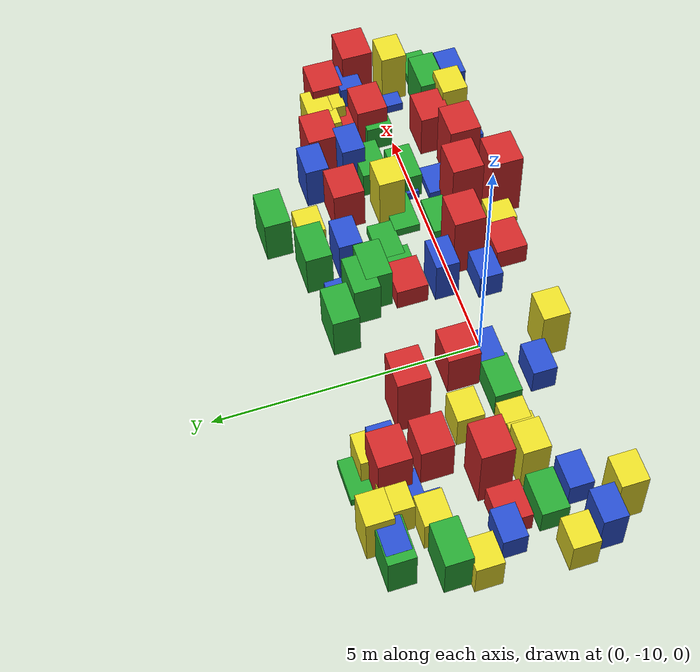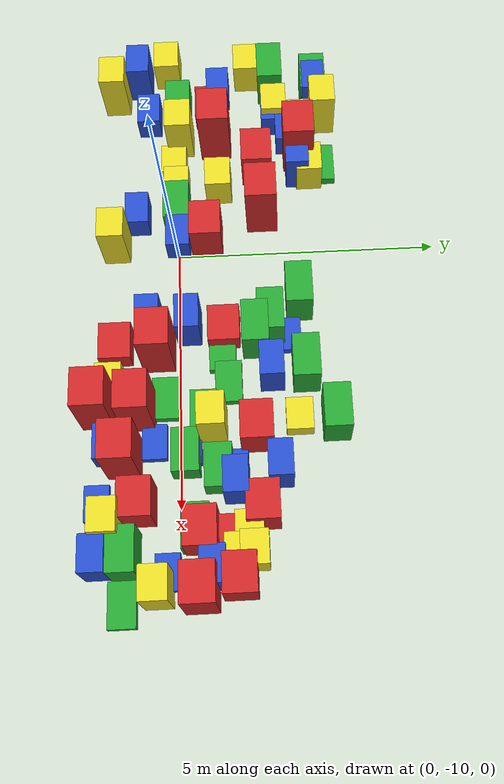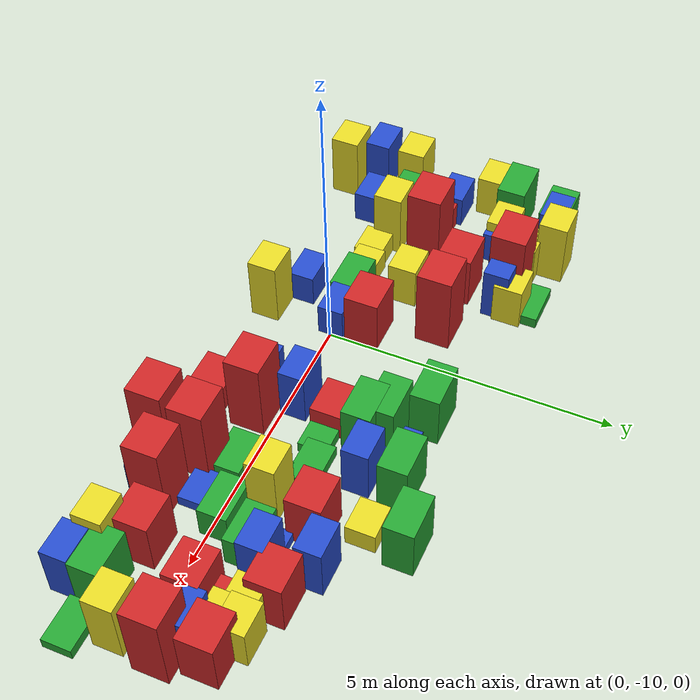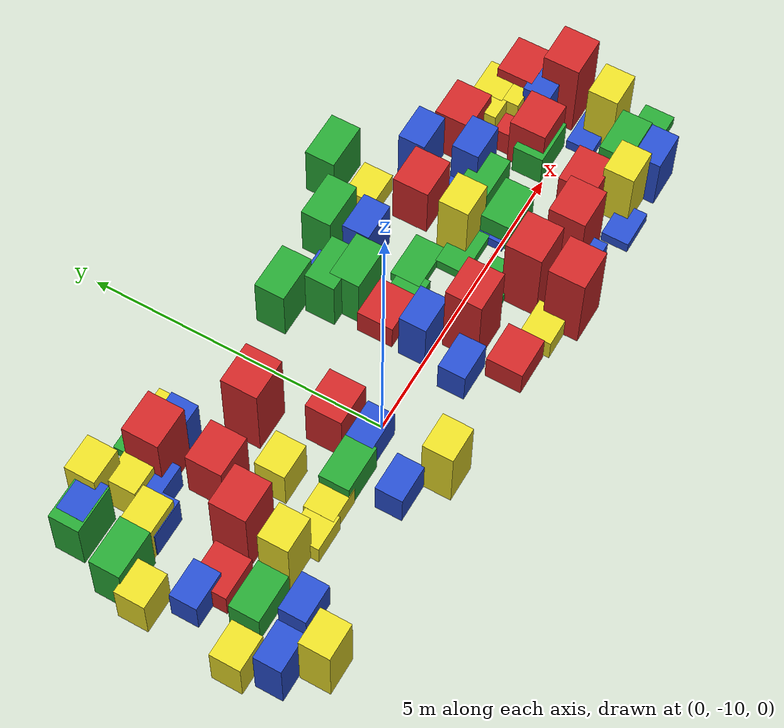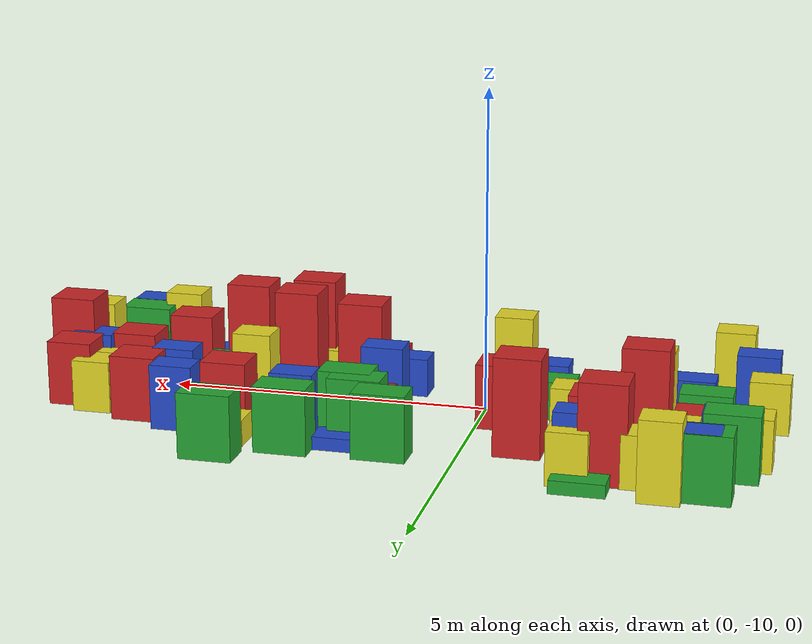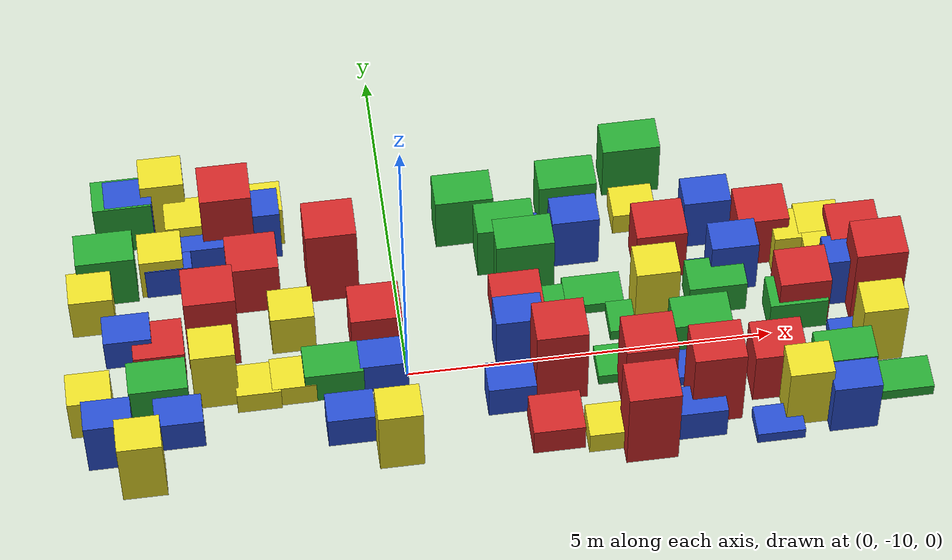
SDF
<sdf version="1.6">
 <world name="default">
  <model name="baggage_A_0.5_clone_11">
   <pose>-3.31837 -9.30433 0.250138 0 -0 0</pose>
   <static>1</static>
   <link name="baggage_A_0.5::link">
    <collision name="collision"><geometry><box><size>0.7 0.6 0.5</size></box></geometry></collision>
    <visual name="visual">
     <geometry><box><size>0.7 0.6 0.5</size></box></geometry>
     <material>
      <script><uri>file://media/materials/scripts/gazebo.material</uri><name>Gazebo/Red</name></script>
     </material>
    </visual>
   </link>
  </model>
  <model name="baggage_A_0.5_clone_12">
   <pose>1.87194 -11.1809 0.25025 0 -0 0</pose>
   <static>1</static>
   <link name="baggage_A_0.5::link">
    <collision name="collision"><geometry><box><size>0.7 0.6 0.5</size></box></geometry></collision>
    <visual name="visual">
     <geometry><box><size>0.7 0.6 0.5</size></box></geometry>
     <material>
      <script><uri>file://media/materials/scripts/gazebo.material</uri><name>Gazebo/Red</name></script>
     </material>
    </visual>
   </link>
  </model>
  <model name="baggage_A_0.5_clone_13">
   <pose>1.60495 -9.14729 0.249612 0 -0 0</pose>
   <static>1</static>
   <link name="baggage_A_0.5::link">
    <collision name="collision"><geometry><box><size>0.7 0.6 0.5</size></box></geometry></collision>
    <visual name="visual">
     <geometry><box><size>0.7 0.6 0.5</size></box></geometry>
     <material>
      <script><uri>file://media/materials/scripts/gazebo.material</uri><name>Gazebo/Red</name></script>
     </material>
    </visual>
   </link>
  </model>
  <model name="baggage_A_0.5_clone_17">
   <pose>5.55061 -9.07477 0.249861 0 -0 0</pose>
   <static>1</static>
   <link name="baggage_A_0.5::link">
    <collision name="collision"><geometry><box><size>0.7 0.6 0.5</size></box></geometry></collision>
    <visual name="visual">
     <geometry><box><size>0.7 0.6 0.5</size></box></geometry>
     <material>
      <script><uri>file://media/materials/scripts/gazebo.material</uri><name>Gazebo/Red</name></script>
     </material>
    </visual>
   </link>
  </model>
  <model name="baggage_A_1.0_clone_0">
   <pose>5.45859 -9.61955 0.500424 0 -0 0</pose>
   <static>1</static>
   <link name="baggage_A_1.0::link">
    <collision name="collision"><geometry><box><size>0.7 0.6 1</size></box></geometry></collision>
    <visual name="visual">
     <geometry><box><size>0.7 0.6 1</size></box></geometry>
     <material>
      <script><uri>file://media/materials/scripts/gazebo.material</uri><name>Gazebo/Red</name></script>
     </material>
    </visual>
   </link>
  </model>
  <model name="baggage_A_1.0_clone_7">
   <pose>4.91955 -10.7368 0.499658 0 -0 0</pose>
   <static>1</static>
   <link name="baggage_A_1.0::link">
    <collision name="collision"><geometry><box><size>0.7 0.6 1</size></box></geometry></collision>
    <visual name="visual">
     <geometry><box><size>0.7 0.6 1</size></box></geometry>
     <material>
      <script><uri>file://media/materials/scripts/gazebo.material</uri><name>Gazebo/Red</name></script>
     </material>
    </visual>
   </link>
  </model>
  <model name="baggage_A_1.0_clone_8">
   <pose>3.65214 -8.58556 0.500396 0 -0 0</pose>
   <static>1</static>
   <link name="baggage_A_1.0::link">
    <collision name="collision"><geometry><box><size>0.7 0.6 1</size></box></geometry></collision>
    <visual name="visual">
     <geometry><box><size>0.7 0.6 1</size></box></geometry>
     <material>
      <script><uri>file://media/materials/scripts/gazebo.material</uri><name>Gazebo/Red</name></script>
     </material>
    </visual>
   </link>
  </model>
  <model name="baggage_A_1.0_clone_11">
   <pose>6.26723 -8.96247 0.50022 0 -0 0</pose>
   <static>1</static>
   <link name="baggage_A_1.0::link">
    <collision name="collision"><geometry><box><size>0.7 0.6 1</size></box></geometry></collision>
    <visual name="visual">
     <geometry><box><size>0.7 0.6 1</size></box></geometry>
     <material>
      <script><uri>file://media/materials/scripts/gazebo.material</uri><name>Gazebo/Red</name></script>
     </material>
    </visual>
   </link>
  </model>
  <model name="baggage_A_1.0_clone_12">
   <pose>-0.366477 -9.43157 0.500268 0 -0 0</pose>
   <static>1</static>
   <link name="baggage_A_1.0::link">
    <collision name="collision"><geometry><box><size>0.7 0.6 1</size></box></geometry></collision>
    <visual name="visual">
     <geometry><box><size>0.7 0.6 1</size></box></geometry>
     <material>
      <script><uri>file://media/materials/scripts/gazebo.material</uri><name>Gazebo/Red</name></script>
     </material>
    </visual>
   </link>
  </model>
  <model name="baggage_A_1.0_clone_15">
   <pose>5.06848 -8.52743 0.499714 0 -0 0</pose>
   <static>1</static>
   <link name="baggage_A_1.0::link">
    <collision name="collision"><geometry><box><size>0.7 0.6 1</size></box></geometry></collision>
    <visual name="visual">
     <geometry><box><size>0.7 0.6 1</size></box></geometry>
     <material>
      <script><uri>file://media/materials/scripts/gazebo.material</uri><name>Gazebo/Red</name></script>
     </material>
    </visual>
   </link>
  </model>
  <model name="baggage_A_1.0_clone_18">
   <pose>-1.93145 -8.39325 0.500077 0 -0 0</pose>
   <static>1</static>
   <link name="baggage_A_1.0::link">
    <collision name="collision"><geometry><box><size>0.7 0.6 1</size></box></geometry></collision>
    <visual name="visual">
     <geometry><box><size>0.7 0.6 1</size></box></geometry>
     <material>
      <script><uri>file://media/materials/scripts/gazebo.material</uri><name>Gazebo/Red</name></script>
     </material>
    </visual>
   </link>
  </model>
  <model name="baggage_A_1.5_clone_2">
   <pose>-2.20156 -7.55419 0.750259 0 -0 0</pose>
   <static>1</static>
   <link name="baggage_A_1.5::link">
    <collision name="collision"><geometry><box><size>0.7 0.6 1.5</size></box></geometry></collision>
    <visual name="visual">
     <geometry><box><size>0.7 0.6 1.5</size></box></geometry>
     <material>
      <script><uri>file://media/materials/scripts/gazebo.material</uri><name>Gazebo/Red</name></script>
     </material>
    </visual>
   </link>
  </model>
  <model name="baggage_A_1.5_clone_3">
   <pose>3.08282 -11.4936 0.750184 0 -0 0</pose>
   <static>1</static>
   <link name="baggage_A_1.5::link">
    <collision name="collision"><geometry><box><size>0.7 0.6 1.5</size></box></geometry></collision>
    <visual name="visual">
     <geometry><box><size>0.7 0.6 1.5</size></box></geometry>
     <material>
      <script><uri>file://media/materials/scripts/gazebo.material</uri><name>Gazebo/Red</name></script>
     </material>
    </visual>
   </link>
  </model>
  <model name="baggage_A_1.5_clone_4">
   <pose>2.01974 -10.377 0.749721 0 -0 0</pose>
   <static>1</static>
   <link name="baggage_A_1.5::link">
    <collision name="collision"><geometry><box><size>0.7 0.6 1.5</size></box></geometry></collision>
    <visual name="visual">
     <geometry><box><size>0.7 0.6 1.5</size></box></geometry>
     <material>
      <script><uri>file://media/materials/scripts/gazebo.material</uri><name>Gazebo/Red</name></script>
     </material>
    </visual>
   </link>
  </model>
  <model name="baggage_A_1.5_clone_7">
   <pose>-0.848958 -8.33948 0.750186 0 -0 0</pose>
   <static>1</static>
   <link name="baggage_A_1.5::link">
    <collision name="collision"><geometry><box><size>0.7 0.6 1.5</size></box></geometry></collision>
    <visual name="visual">
     <geometry><box><size>0.7 0.6 1.5</size></box></geometry>
     <material>
      <script><uri>file://media/materials/scripts/gazebo.material</uri><name>Gazebo/Red</name></script>
     </material>
    </visual>
   </link>
  </model>
  <model name="baggage_A_1.5_clone_8">
   <pose>6.46251 -9.63393 0.750483 0 -0 0</pose>
   <static>1</static>
   <link name="baggage_A_1.5::link">
    <collision name="collision"><geometry><box><size>0.7 0.6 1.5</size></box></geometry></collision>
    <visual name="visual">
     <geometry><box><size>0.7 0.6 1.5</size></box></geometry>
     <material>
      <script><uri>file://media/materials/scripts/gazebo.material</uri><name>Gazebo/Red</name></script>
     </material>
    </visual>
   </link>
  </model>
  <model name="baggage_A_1.5_clone_9">
   <pose>-2.56708 -9.21065 0.749579 0 -0 0</pose>
   <static>1</static>
   <link name="baggage_A_1.5::link">
    <collision name="collision"><geometry><box><size>0.7 0.6 1.5</size></box></geometry></collision>
    <visual name="visual">
     <geometry><box><size>0.7 0.6 1.5</size></box></geometry>
     <material>
      <script><uri>file://media/materials/scripts/gazebo.material</uri><name>Gazebo/Red</name></script>
     </material>
    </visual>
   </link>
  </model>
  <model name="baggage_A_1.5_clone_16">
   <pose>3.15994 -10.748 0.749519 0 -0 0</pose>
   <static>1</static>
   <link name="baggage_A_1.5::link">
    <collision name="collision"><geometry><box><size>0.7 0.6 1.5</size></box></geometry></collision>
    <visual name="visual">
     <geometry><box><size>0.7 0.6 1.5</size></box></geometry>
     <material>
      <script><uri>file://media/materials/scripts/gazebo.material</uri><name>Gazebo/Red</name></script>
     </material>
    </visual>
   </link>
  </model>
  <model name="baggage_A_1.5_clone_19">
   <pose>4.03504 -11.0029 0.74987 0 -0 0</pose>
   <static>1</static>
   <link name="baggage_A_1.5::link">
    <collision name="collision"><geometry><box><size>0.7 0.6 1.5</size></box></geometry></collision>
    <visual name="visual">
     <geometry><box><size>0.7 0.6 1.5</size></box></geometry>
     <material>
      <script><uri>file://media/materials/scripts/gazebo.material</uri><name>Gazebo/Red</name></script>
     </material>
    </visual>
   </link>
  </model>
  <model name="baggage_B_0.2_clone_1">
   <pose>3.77178 -10.4583 0.100323 0 -0 0</pose>
   <static>1</static>
   <link name="baggage_B_0.2::link">
    <collision name="collision"><geometry><box><size>0.65 0.45 0.2</size></box></geometry></collision>
    <visual name="visual">
     <geometry><box><size>0.65 0.45 0.2</size></box></geometry>
     <material>
      <script><uri>file://media/materials/scripts/gazebo.material</uri><name>Gazebo/Blue</name></script>
     </material>
    </visual>
   </link>
  </model>
  <model name="baggage_B_0.2_clone_2">
   <pose>3.89194 -9.83264 0.100276 0 -0 0</pose>
   <static>1</static>
   <link name="baggage_B_0.2::link">
    <collision name="collision"><geometry><box><size>0.65 0.45 0.2</size></box></geometry></collision>
    <visual name="visual">
     <geometry><box><size>0.65 0.45 0.2</size></box></geometry>
     <material>
      <script><uri>file://media/materials/scripts/gazebo.material</uri><name>Gazebo/Blue</name></script>
     </material>
    </visual>
   </link>
  </model>
  <model name="baggage_B_0.2_clone_3">
   <pose>4.29897 -8.99162 0.099664 0 -0 0</pose>
   <static>1</static>
   <link name="baggage_B_0.2::link">
    <collision name="collision"><geometry><box><size>0.65 0.45 0.2</size></box></geometry></collision>
    <visual name="visual">
     <geometry><box><size>0.65 0.45 0.2</size></box></geometry>
     <material>
      <script><uri>file://media/materials/scripts/gazebo.material</uri><name>Gazebo/Blue</name></script>
     </material>
    </visual>
   </link>
  </model>
  <model name="baggage_B_0.2_clone_6">
   <pose>1.7833 -7.92105 0.100006 0 -0 0</pose>
   <static>1</static>
   <link name="baggage_B_0.2::link">
    <collision name="collision"><geometry><box><size>0.65 0.45 0.2</size></box></geometry></collision>
    <visual name="visual">
     <geometry><box><size>0.65 0.45 0.2</size></box></geometry>
     <material>
      <script><uri>file://media/materials/scripts/gazebo.material</uri><name>Gazebo/Blue</name></script>
     </material>
    </visual>
   </link>
  </model>
  <model name="baggage_B_0.2_clone_7">
   <pose>4.8451 -11.4951 0.099656 0 -0 0</pose>
   <static>1</static>
   <link name="baggage_B_0.2::link">
    <collision name="collision"><geometry><box><size>0.65 0.45 0.2</size></box></geometry></collision>
    <visual name="visual">
     <geometry><box><size>0.65 0.45 0.2</size></box></geometry>
     <material>
      <script><uri>file://media/materials/scripts/gazebo.material</uri><name>Gazebo/Blue</name></script>
     </material>
    </visual>
   </link>
  </model>
  <model name="baggage_B_0.2_clone_12">
   <pose>6.10095 -10.2331 0.100364 0 -0 0</pose>
   <static>1</static>
   <link name="baggage_B_0.2::link">
    <collision name="collision"><geometry><box><size>0.65 0.45 0.2</size></box></geometry></collision>
    <visual name="visual">
     <geometry><box><size>0.65 0.45 0.2</size></box></geometry>
     <material>
      <script><uri>file://media/materials/scripts/gazebo.material</uri><name>Gazebo/Blue</name></script>
     </material>
    </visual>
   </link>
  </model>
  <model name="baggage_B_0.6_clone_7">
   <pose>-2.59718 -7.76422 0.300177 0 -0 0</pose>
   <static>1</static>
   <link name="baggage_B_0.6::link">
    <collision name="collision"><geometry><box><size>0.65 0.45 0.6</size></box></geometry></collision>
    <visual name="visual">
     <geometry><box><size>0.65 0.45 0.6</size></box></geometry>
     <material>
      <script><uri>file://media/materials/scripts/gazebo.material</uri><name>Gazebo/Blue</name></script>
     </material>
    </visual>
   </link>
  </model>
  <model name="baggage_B_0.6_clone_8">
   <pose>-3.06939 -8.04387 0.299982 0 -0 0</pose>
   <static>1</static>
   <link name="baggage_B_0.6::link">
    <collision name="collision"><geometry><box><size>0.65 0.45 0.6</size></box></geometry></collision>
    <visual name="visual">
     <geometry><box><size>0.65 0.45 0.6</size></box></geometry>
     <material>
      <script><uri>file://media/materials/scripts/gazebo.material</uri><name>Gazebo/Blue</name></script>
     </material>
    </visual>
   </link>
  </model>
  <model name="baggage_B_0.6_clone_9">
   <pose>1.33277 -10.5797 0.300437 0 -0 0</pose>
   <static>1</static>
   <link name="baggage_B_0.6::link">
    <collision name="collision"><geometry><box><size>0.65 0.45 0.6</size></box></geometry></collision>
    <visual name="visual">
     <geometry><box><size>0.65 0.45 0.6</size></box></geometry>
     <material>
      <script><uri>file://media/materials/scripts/gazebo.material</uri><name>Gazebo/Blue</name></script>
     </material>
    </visual>
   </link>
  </model>
  <model name="baggage_B_0.6_clone_12">
   <pose>-0.328181 -9.98674 0.30028 0 -0 0</pose>
   <static>1</static>
   <link name="baggage_B_0.6::link">
    <collision name="collision"><geometry><box><size>0.65 0.45 0.6</size></box></geometry></collision>
    <visual name="visual">
     <geometry><box><size>0.65 0.45 0.6</size></box></geometry>
     <material>
      <script><uri>file://media/materials/scripts/gazebo.material</uri><name>Gazebo/Blue</name></script>
     </material>
    </visual>
   </link>
  </model>
  <model name="baggage_B_0.6_clone_13">
   <pose>3.81011 -11.3067 0.299532 0 -0 0</pose>
   <static>1</static>
   <link name="baggage_B_0.6::link">
    <collision name="collision"><geometry><box><size>0.65 0.45 0.6</size></box></geometry></collision>
    <visual name="visual">
     <geometry><box><size>0.65 0.45 0.6</size></box></geometry>
     <material>
      <script><uri>file://media/materials/scripts/gazebo.material</uri><name>Gazebo/Blue</name></script>
     </material>
    </visual>
   </link>
  </model>
  <model name="baggage_B_0.6_clone_14">
   <pose>-0.855295 -10.7759 0.300129 0 -0 0</pose>
   <static>1</static>
   <link name="baggage_B_0.6::link">
    <collision name="collision"><geometry><box><size>0.65 0.45 0.6</size></box></geometry></collision>
    <visual name="visual">
     <geometry><box><size>0.65 0.45 0.6</size></box></geometry>
     <material>
      <script><uri>file://media/materials/scripts/gazebo.material</uri><name>Gazebo/Blue</name></script>
     </material>
    </visual>
   </link>
  </model>
  <model name="baggage_B_0.6_clone_16">
   <pose>-3.7208 -9.14041 0.299694 0 -0 0</pose>
   <static>1</static>
   <link name="baggage_B_0.6::link">
    <collision name="collision"><geometry><box><size>0.65 0.45 0.6</size></box></geometry></collision>
    <visual name="visual">
     <geometry><box><size>0.65 0.45 0.6</size></box></geometry>
     <material>
      <script><uri>file://media/materials/scripts/gazebo.material</uri><name>Gazebo/Blue</name></script>
     </material>
    </visual>
   </link>
  </model>
  <model name="baggage_B_0.6_clone_19">
   <pose>-3.13474 -10.5467 0.29962 0 -0 0</pose>
   <static>1</static>
   <link name="baggage_B_0.6::link">
    <collision name="collision"><geometry><box><size>0.65 0.45 0.6</size></box></geometry></collision>
    <visual name="visual">
     <geometry><box><size>0.65 0.45 0.6</size></box></geometry>
     <material>
      <script><uri>file://media/materials/scripts/gazebo.material</uri><name>Gazebo/Blue</name></script>
     </material>
    </visual>
   </link>
  </model>
  <model name="baggage_B_1.0_clone_0">
   <pose>4.35836 -8.18912 0.500277 0 -0 0</pose>
   <static>1</static>
   <link name="baggage_B_1.0::link">
    <collision name="collision"><geometry><box><size>0.65 0.45 1</size></box></geometry></collision>
    <visual name="visual">
     <geometry><box><size>0.65 0.45 1</size></box></geometry>
     <material>
      <script><uri>file://media/materials/scripts/gazebo.material</uri><name>Gazebo/Blue</name></script>
     </material>
    </visual>
   </link>
  </model>
  <model name="baggage_B_1.0_clone_2">
   <pose>1.53997 -9.80065 0.499892 0 -0 0</pose>
   <static>1</static>
   <link name="baggage_B_1.0::link">
    <collision name="collision"><geometry><box><size>0.65 0.45 1</size></box></geometry></collision>
    <visual name="visual">
     <geometry><box><size>0.65 0.45 1</size></box></geometry>
     <material>
      <script><uri>file://media/materials/scripts/gazebo.material</uri><name>Gazebo/Blue</name></script>
     </material>
    </visual>
   </link>
  </model>
  <model name="baggage_B_1.0_clone_6">
   <pose>6.10682 -9.41213 0.499655 0 -0 0</pose>
   <static>1</static>
   <link name="baggage_B_1.0::link">
    <collision name="collision"><geometry><box><size>0.65 0.45 1</size></box></geometry></collision>
    <visual name="visual">
     <geometry><box><size>0.65 0.45 1</size></box></geometry>
     <material>
      <script><uri>file://media/materials/scripts/gazebo.material</uri><name>Gazebo/Blue</name></script>
     </material>
    </visual>
   </link>
  </model>
  <model name="baggage_B_1.0_clone_7">
   <pose>4.61085 -8.98332 0.500376 0 -0 0</pose>
   <static>1</static>
   <link name="baggage_B_1.0::link">
    <collision name="collision"><geometry><box><size>0.65 0.45 1</size></box></geometry></collision>
    <visual name="visual">
     <geometry><box><size>0.65 0.45 1</size></box></geometry>
     <material>
      <script><uri>file://media/materials/scripts/gazebo.material</uri><name>Gazebo/Blue</name></script>
     </material>
    </visual>
   </link>
  </model>
  <model name="baggage_B_1.0_clone_13">
   <pose>5.84222 -11.4452 0.49988 0 -0 0</pose>
   <static>1</static>
   <link name="baggage_B_1.0::link">
    <collision name="collision"><geometry><box><size>0.65 0.45 1</size></box></geometry></collision>
    <visual name="visual">
     <geometry><box><size>0.65 0.45 1</size></box></geometry>
     <material>
      <script><uri>file://media/materials/scripts/gazebo.material</uri><name>Gazebo/Blue</name></script>
     </material>
    </visual>
   </link>
  </model>
  <model name="baggage_B_1.0_clone_15">
   <pose>-1.80636 -7.59524 0.500221 0 -0 0</pose>
   <static>1</static>
   <link name="baggage_B_1.0::link">
    <collision name="collision"><geometry><box><size>0.65 0.45 1</size></box></geometry></collision>
    <visual name="visual">
     <geometry><box><size>0.65 0.45 1</size></box></geometry>
     <material>
      <script><uri>file://media/materials/scripts/gazebo.material</uri><name>Gazebo/Blue</name></script>
     </material>
    </visual>
   </link>
  </model>
  <model name="baggage_B_1.0_clone_16">
   <pose>2.52067 -8.27161 0.499682 0 -0 0</pose>
   <static>1</static>
   <link name="baggage_B_1.0::link">
    <collision name="collision"><geometry><box><size>0.65 0.45 1</size></box></geometry></collision>
    <visual name="visual">
     <geometry><box><size>0.65 0.45 1</size></box></geometry>
     <material>
      <script><uri>file://media/materials/scripts/gazebo.material</uri><name>Gazebo/Blue</name></script>
     </material>
    </visual>
   </link>
  </model>
  <model name="baggage_B_1.0_clone_17">
   <pose>-4.07109 -10.7288 0.4998 0 -0 0</pose>
   <static>1</static>
   <link name="baggage_B_1.0::link">
    <collision name="collision"><geometry><box><size>0.65 0.45 1</size></box></geometry></collision>
    <visual name="visual">
     <geometry><box><size>0.65 0.45 1</size></box></geometry>
     <material>
      <script><uri>file://media/materials/scripts/gazebo.material</uri><name>Gazebo/Blue</name></script>
     </material>
    </visual>
   </link>
  </model>
  <model name="baggage_B_1.0_clone_18">
   <pose>-3.52336 -7.19028 0.50032 0 -0 0</pose>
   <static>1</static>
   <link name="baggage_B_1.0::link">
    <collision name="collision"><geometry><box><size>0.65 0.45 1</size></box></geometry></collision>
    <visual name="visual">
     <geometry><box><size>0.65 0.45 1</size></box></geometry>
     <material>
      <script><uri>file://media/materials/scripts/gazebo.material</uri><name>Gazebo/Blue</name></script>
     </material>
    </visual>
   </link>
  </model>
  <model name="baggage_C_0.4_clone_2">
   <pose>-1.55497 -10.0172 0.199962 0 -0 0</pose>
   <static>1</static>
   <link name="baggage_C_0.4::link">
    <collision name="collision"><geometry><box><size>0.6 0.5 0.4</size></box></geometry></collision>
    <visual name="visual">
     <geometry><box><size>0.6 0.5 0.4</size></box></geometry>
     <material>
      <script><uri>file://media/materials/scripts/gazebo.material</uri><name>Gazebo/Yellow</name></script>
     </material>
    </visual>
   </link>
  </model>
  <model name="baggage_C_0.4_clone_10">
   <pose>-2.03667 -10.0567 0.199668 0 -0 0</pose>
   <static>1</static>
   <link name="baggage_C_0.4::link">
    <collision name="collision"><geometry><box><size>0.6 0.5 0.4</size></box></geometry></collision>
    <visual name="visual">
     <geometry><box><size>0.6 0.5 0.4</size></box></geometry>
     <material>
      <script><uri>file://media/materials/scripts/gazebo.material</uri><name>Gazebo/Yellow</name></script>
     </material>
    </visual>
   </link>
  </model>
  <model name="baggage_C_0.4_clone_13">
   <pose>3.41294 -7.80368 0.20041 0 -0 0</pose>
   <static>1</static>
   <link name="baggage_C_0.4::link">
    <collision name="collision"><geometry><box><size>0.6 0.5 0.4</size></box></geometry></collision>
    <visual name="visual">
     <geometry><box><size>0.6 0.5 0.4</size></box></geometry>
     <material>
      <script><uri>file://media/materials/scripts/gazebo.material</uri><name>Gazebo/Yellow</name></script>
     </material>
    </visual>
   </link>
  </model>
  <model name="baggage_C_0.4_clone_16">
   <pose>2.56529 -11.3131 0.19962 0 -0 0</pose>
   <static>1</static>
   <link name="baggage_C_0.4::link">
    <collision name="collision"><geometry><box><size>0.6 0.5 0.4</size></box></geometry></collision>
    <visual name="visual">
     <geometry><box><size>0.6 0.5 0.4</size></box></geometry>
     <material>
      <script><uri>file://media/materials/scripts/gazebo.material</uri><name>Gazebo/Yellow</name></script>
     </material>
    </visual>
   </link>
  </model>
  <model name="baggage_C_0.8_clone_3">
   <pose>-3.16041 -8.00644 0.400375 0 -0 0</pose>
   <static>1</static>
   <link name="baggage_C_0.8::link">
    <collision name="collision"><geometry><box><size>0.6 0.5 0.8</size></box></geometry></collision>
    <visual name="visual">
     <geometry><box><size>0.6 0.5 0.8</size></box></geometry>
     <material>
      <script><uri>file://media/materials/scripts/gazebo.material</uri><name>Gazebo/Yellow</name></script>
     </material>
    </visual>
   </link>
  </model>
  <model name="baggage_C_0.8_clone_5">
   <pose>5.49535 -8.77444 0.399685 0 -0 0</pose>
   <static>1</static>
   <link name="baggage_C_0.8::link">
    <collision name="collision"><geometry><box><size>0.6 0.5 0.8</size></box></geometry></collision>
    <visual name="visual">
     <geometry><box><size>0.6 0.5 0.8</size></box></geometry>
     <material>
      <script><uri>file://media/materials/scripts/gazebo.material</uri><name>Gazebo/Yellow</name></script>
     </material>
    </visual>
   </link>
  </model>
  <model name="baggage_C_0.8_clone_7">
   <pose>-1.47845 -9.17321 0.400499 0 -0 0</pose>
   <static>1</static>
   <link name="baggage_C_0.8::link">
    <collision name="collision"><geometry><box><size>0.6 0.5 0.8</size></box></geometry></collision>
    <visual name="visual">
     <geometry><box><size>0.6 0.5 0.8</size></box></geometry>
     <material>
      <script><uri>file://media/materials/scripts/gazebo.material</uri><name>Gazebo/Yellow</name></script>
     </material>
    </visual>
   </link>
  </model>
  <model name="baggage_C_0.8_clone_10">
   <pose>-1.72945 -7.36182 0.400425 0 -0 0</pose>
   <static>1</static>
   <link name="baggage_C_0.8::link">
    <collision name="collision"><geometry><box><size>0.6 0.5 0.8</size></box></geometry></collision>
    <visual name="visual">
     <geometry><box><size>0.6 0.5 0.8</size></box></geometry>
     <material>
      <script><uri>file://media/materials/scripts/gazebo.material</uri><name>Gazebo/Yellow</name></script>
     </material>
    </visual>
   </link>
  </model>
  <model name="baggage_C_0.8_clone_11">
   <pose>-4.15694 -8.54129 0.400298 0 -0 0</pose>
   <static>1</static>
   <link name="baggage_C_0.8::link">
    <collision name="collision"><geometry><box><size>0.6 0.5 0.8</size></box></geometry></collision>
    <visual name="visual">
     <geometry><box><size>0.6 0.5 0.8</size></box></geometry>
     <material>
      <script><uri>file://media/materials/scripts/gazebo.material</uri><name>Gazebo/Yellow</name></script>
     </material>
    </visual>
   </link>
  </model>
  <model name="baggage_C_0.8_clone_12">
   <pose>-2.7549 -7.48408 0.400461 0 -0 0</pose>
   <static>1</static>
   <link name="baggage_C_0.8::link">
    <collision name="collision"><geometry><box><size>0.6 0.5 0.8</size></box></geometry></collision>
    <visual name="visual">
     <geometry><box><size>0.6 0.5 0.8</size></box></geometry>
     <material>
      <script><uri>file://media/materials/scripts/gazebo.material</uri><name>Gazebo/Yellow</name></script>
     </material>
    </visual>
   </link>
  </model>
  <model name="baggage_C_0.8_clone_13">
   <pose>5.86818 -8.96882 0.399781 0 -0 0</pose>
   <static>1</static>
   <link name="baggage_C_0.8::link">
    <collision name="collision"><geometry><box><size>0.6 0.5 0.8</size></box></geometry></collision>
    <visual name="visual">
     <geometry><box><size>0.6 0.5 0.8</size></box></geometry>
     <material>
      <script><uri>file://media/materials/scripts/gazebo.material</uri><name>Gazebo/Yellow</name></script>
     </material>
    </visual>
   </link>
  </model>
  <model name="baggage_C_0.8_clone_16">
   <pose>-4.28946 -10.1662 0.399712 0 -0 0</pose>
   <static>1</static>
   <link name="baggage_C_0.8::link">
    <collision name="collision"><geometry><box><size>0.6 0.5 0.8</size></box></geometry></collision>
    <visual name="visual">
     <geometry><box><size>0.6 0.5 0.8</size></box></geometry>
     <material>
      <script><uri>file://media/materials/scripts/gazebo.material</uri><name>Gazebo/Yellow</name></script>
     </material>
    </visual>
   </link>
  </model>
  <model name="baggage_C_0.8_clone_18">
   <pose>5.83286 -8.70082 0.400418 0 -0 0</pose>
   <static>1</static>
   <link name="baggage_C_0.8::link">
    <collision name="collision"><geometry><box><size>0.6 0.5 0.8</size></box></geometry></collision>
    <visual name="visual">
     <geometry><box><size>0.6 0.5 0.8</size></box></geometry>
     <material>
      <script><uri>file://media/materials/scripts/gazebo.material</uri><name>Gazebo/Yellow</name></script>
     </material>
    </visual>
   </link>
  </model>
  <model name="baggage_C_1.2_clone_1">
   <pose>-3.043 -7.0378 0.599797 0 -0 0</pose>
   <static>1</static>
   <link name="baggage_C_1.2::link">
    <collision name="collision"><geometry><box><size>0.6 0.5 1.2</size></box></geometry></collision>
    <visual name="visual">
     <geometry><box><size>0.6 0.5 1.2</size></box></geometry>
     <material>
      <script><uri>file://media/materials/scripts/gazebo.material</uri><name>Gazebo/Yellow</name></script>
     </material>
    </visual>
   </link>
  </model>
  <model name="baggage_C_1.2_clone_2">
   <pose>-3.67884 -11.219 0.600288 0 -0 0</pose>
   <static>1</static>
   <link name="baggage_C_1.2::link">
    <collision name="collision"><geometry><box><size>0.6 0.5 1.2</size></box></geometry></collision>
    <visual name="visual">
     <geometry><box><size>0.6 0.5 1.2</size></box></geometry>
     <material>
      <script><uri>file://media/materials/scripts/gazebo.material</uri><name>Gazebo/Yellow</name></script>
     </material>
    </visual>
   </link>
  </model>
  <model name="baggage_C_1.2_clone_4">
   <pose>5.24246 -11.2477 0.600237 0 -0 0</pose>
   <static>1</static>
   <link name="baggage_C_1.2::link">
    <collision name="collision"><geometry><box><size>0.6 0.5 1.2</size></box></geometry></collision>
    <visual name="visual">
     <geometry><box><size>0.6 0.5 1.2</size></box></geometry>
     <material>
      <script><uri>file://media/materials/scripts/gazebo.material</uri><name>Gazebo/Yellow</name></script>
     </material>
    </visual>
   </link>
  </model>
  <model name="baggage_C_1.2_clone_9">
   <pose>6.40046 -10.3826 0.60009 0 -0 0</pose>
   <static>1</static>
   <link name="baggage_C_1.2::link">
    <collision name="collision"><geometry><box><size>0.6 0.5 1.2</size></box></geometry></collision>
    <visual name="visual">
     <geometry><box><size>0.6 0.5 1.2</size></box></geometry>
     <material>
      <script><uri>file://media/materials/scripts/gazebo.material</uri><name>Gazebo/Yellow</name></script>
     </material>
    </visual>
   </link>
  </model>
  <model name="baggage_C_1.2_clone_13">
   <pose>3.47639 -9.38669 0.600152 0 -0 0</pose>
   <static>1</static>
   <link name="baggage_C_1.2::link">
    <collision name="collision"><geometry><box><size>0.6 0.5 1.2</size></box></geometry></collision>
    <visual name="visual">
     <geometry><box><size>0.6 0.5 1.2</size></box></geometry>
     <material>
      <script><uri>file://media/materials/scripts/gazebo.material</uri><name>Gazebo/Yellow</name></script>
     </material>
    </visual>
   </link>
  </model>
  <model name="baggage_C_1.2_clone_17">
   <pose>-2.60012 -9.91803 0.599966 0 -0 0</pose>
   <static>1</static>
   <link name="baggage_C_1.2::link">
    <collision name="collision"><geometry><box><size>0.6 0.5 1.2</size></box></geometry></collision>
    <visual name="visual">
     <geometry><box><size>0.6 0.5 1.2</size></box></geometry>
     <material>
      <script><uri>file://media/materials/scripts/gazebo.material</uri><name>Gazebo/Yellow</name></script>
     </material>
    </visual>
   </link>
  </model>
  <model name="baggage_C_1.2_clone_19">
   <pose>-0.241138 -11.1961 0.599803 0 -0 0</pose>
   <static>1</static>
   <link name="baggage_C_1.2::link">
    <collision name="collision"><geometry><box><size>0.6 0.5 1.2</size></box></geometry></collision>
    <visual name="visual">
     <geometry><box><size>0.6 0.5 1.2</size></box></geometry>
     <material>
      <script><uri>file://media/materials/scripts/gazebo.material</uri><name>Gazebo/Yellow</name></script>
     </material>
    </visual>
   </link>
  </model>
  <model name="baggage_D_0.2_clone_0">
   <pose>2.94676 -10.2616 0.100466 0 -0 0</pose>
   <static>1</static>
   <link name="baggage_D_0.2::link">
    <collision name="collision"><geometry><box><size>0.8 0.5 0.2</size></box></geometry></collision>
    <visual name="visual">
     <geometry><box><size>0.8 0.5 0.2</size></box></geometry>
     <material>
      <script><uri>file://media/materials/scripts/gazebo.material</uri><name>Gazebo/Green</name></script>
     </material>
    </visual>
   </link>
  </model>
  <model name="baggage_D_0.2_clone_1">
   <pose>2.04731 -9.18651 0.100025 0 -0 0</pose>
   <static>1</static>
   <link name="baggage_D_0.2::link">
    <collision name="collision"><geometry><box><size>0.8 0.5 0.2</size></box></geometry></collision>
    <visual name="visual">
     <geometry><box><size>0.8 0.5 0.2</size></box></geometry>
     <material>
      <script><uri>file://media/materials/scripts/gazebo.material</uri><name>Gazebo/Green</name></script>
     </material>
    </visual>
   </link>
  </model>
  <model name="baggage_D_0.2_clone_3">
   <pose>6.61347 -11.0205 0.099749 0 -0 0</pose>
   <static>1</static>
   <link name="baggage_D_0.2::link">
    <collision name="collision"><geometry><box><size>0.8 0.5 0.2</size></box></geometry></collision>
    <visual name="visual">
     <geometry><box><size>0.8 0.5 0.2</size></box></geometry>
     <material>
      <script><uri>file://media/materials/scripts/gazebo.material</uri><name>Gazebo/Green</name></script>
     </material>
    </visual>
   </link>
  </model>
  <model name="baggage_D_0.2_clone_8">
   <pose>-1.92488 -7.08806 0.099611 0 -0 0</pose>
   <static>1</static>
   <link name="baggage_D_0.2::link">
    <collision name="collision"><geometry><box><size>0.8 0.5 0.2</size></box></geometry></collision>
    <visual name="visual">
     <geometry><box><size>0.8 0.5 0.2</size></box></geometry>
     <material>
      <script><uri>file://media/materials/scripts/gazebo.material</uri><name>Gazebo/Green</name></script>
     </material>
    </visual>
   </link>
  </model>
  <model name="baggage_D_0.2_clone_10">
   <pose>3.21341 -9.56632 0.100377 0 -0 0</pose>
   <static>1</static>
   <link name="baggage_D_0.2::link">
    <collision name="collision"><geometry><box><size>0.8 0.5 0.2</size></box></geometry></collision>
    <visual name="visual">
     <geometry><box><size>0.8 0.5 0.2</size></box></geometry>
     <material>
      <script><uri>file://media/materials/scripts/gazebo.material</uri><name>Gazebo/Green</name></script>
     </material>
    </visual>
   </link>
  </model>
  <model name="baggage_D_0.2_clone_11">
   <pose>2.67309 -9.08721 0.100165 0 -0 0</pose>
   <static>1</static>
   <link name="baggage_D_0.2::link">
    <collision name="collision"><geometry><box><size>0.8 0.5 0.2</size></box></geometry></collision>
    <visual name="visual">
     <geometry><box><size>0.8 0.5 0.2</size></box></geometry>
     <material>
      <script><uri>file://media/materials/scripts/gazebo.material</uri><name>Gazebo/Green</name></script>
     </material>
    </visual>
   </link>
  </model>
  <model name="baggage_D_0.6_clone_0">
   <pose>-3.37365 -9.95737 0.300172 0 -0 0</pose>
   <static>1</static>
   <link name="baggage_D_0.6::link">
    <collision name="collision"><geometry><box><size>0.8 0.5 0.6</size></box></geometry></collision>
    <visual name="visual">
     <geometry><box><size>0.8 0.5 0.6</size></box></geometry>
     <material>
      <script><uri>file://media/materials/scripts/gazebo.material</uri><name>Gazebo/Green</name></script>
     </material>
    </visual>
   </link>
  </model>
  <model name="baggage_D_0.6_clone_2">
   <pose>5.38172 -9.72072 0.299943 0 -0 0</pose>
   <static>1</static>
   <link name="baggage_D_0.6::link">
    <collision name="collision"><geometry><box><size>0.8 0.5 0.6</size></box></geometry></collision>
    <visual name="visual">
     <geometry><box><size>0.8 0.5 0.6</size></box></geometry>
     <material>
      <script><uri>file://media/materials/scripts/gazebo.material</uri><name>Gazebo/Green</name></script>
     </material>
    </visual>
   </link>
  </model>
  <model name="baggage_D_0.6_clone_3">
   <pose>-1.00857 -10.0091 0.300075 0 -0 0</pose>
   <static>1</static>
   <link name="baggage_D_0.6::link">
    <collision name="collision"><geometry><box><size>0.8 0.5 0.6</size></box></geometry></collision>
    <visual name="visual">
     <geometry><box><size>0.8 0.5 0.6</size></box></geometry>
     <material>
      <script><uri>file://media/materials/scripts/gazebo.material</uri><name>Gazebo/Green</name></script>
     </material>
    </visual>
   </link>
  </model>
  <model name="baggage_D_0.6_clone_6">
   <pose>4.33504 -9.30172 0.300004 0 -0 0</pose>
   <static>1</static>
   <link name="baggage_D_0.6::link">
    <collision name="collision"><geometry><box><size>0.8 0.5 0.6</size></box></geometry></collision>
    <visual name="visual">
     <geometry><box><size>0.8 0.5 0.6</size></box></geometry>
     <material>
      <script><uri>file://media/materials/scripts/gazebo.material</uri><name>Gazebo/Green</name></script>
     </material>
    </visual>
   </link>
  </model>
  <model name="baggage_D_0.6_clone_18">
   <pose>4.03283 -9.8834 0.299725 0 -0 0</pose>
   <static>1</static>
   <link name="baggage_D_0.6::link">
    <collision name="collision"><geometry><box><size>0.8 0.5 0.6</size></box></geometry></collision>
    <visual name="visual">
     <geometry><box><size>0.8 0.5 0.6</size></box></geometry>
     <material>
      <script><uri>file://media/materials/scripts/gazebo.material</uri><name>Gazebo/Green</name></script>
     </material>
    </visual>
   </link>
  </model>
  <model name="baggage_D_1.0_clone_1">
   <pose>1.78235 -8.55029 0.499829 0 -0 0</pose>
   <static>1</static>
   <link name="baggage_D_1.0::link">
    <collision name="collision"><geometry><box><size>0.8 0.5 1</size></box></geometry></collision>
    <visual name="visual">
     <geometry><box><size>0.8 0.5 1</size></box></geometry>
     <material>
      <script><uri>file://media/materials/scripts/gazebo.material</uri><name>Gazebo/Green</name></script>
     </material>
    </visual>
   </link>
  </model>
  <model name="baggage_D_1.0_clone_4">
   <pose>3.46195 -7.13622 0.500464 0 -0 0</pose>
   <static>1</static>
   <link name="baggage_D_1.0::link">
    <collision name="collision"><geometry><box><size>0.8 0.5 1</size></box></geometry></collision>
    <visual name="visual">
     <geometry><box><size>0.8 0.5 1</size></box></geometry>
     <material>
      <script><uri>file://media/materials/scripts/gazebo.material</uri><name>Gazebo/Green</name></script>
     </material>
    </visual>
   </link>
  </model>
  <model name="baggage_D_1.0_clone_10">
   <pose>2.49528 -7.63991 0.499609 0 -0 0</pose>
   <static>1</static>
   <link name="baggage_D_1.0::link">
    <collision name="collision"><geometry><box><size>0.8 0.5 1</size></box></geometry></collision>
    <visual name="visual">
     <geometry><box><size>0.8 0.5 1</size></box></geometry>
     <material>
      <script><uri>file://media/materials/scripts/gazebo.material</uri><name>Gazebo/Green</name></script>
     </material>
    </visual>
   </link>
  </model>
  <model name="baggage_D_1.0_clone_12">
   <pose>5.78948 -10.9579 0.500155 0 -0 0</pose>
   <static>1</static>
   <link name="baggage_D_1.0::link">
    <collision name="collision"><geometry><box><size>0.8 0.5 1</size></box></geometry></collision>
    <visual name="visual">
     <geometry><box><size>0.8 0.5 1</size></box></geometry>
     <material>
      <script><uri>file://media/materials/scripts/gazebo.material</uri><name>Gazebo/Green</name></script>
     </material>
    </visual>
   </link>
  </model>
  <model name="baggage_D_1.0_clone_13">
   <pose>-3.9131 -8.05958 0.500309 0 -0 0</pose>
   <static>1</static>
   <link name="baggage_D_1.0::link">
    <collision name="collision"><geometry><box><size>0.8 0.5 1</size></box></geometry></collision>
    <visual name="visual">
     <geometry><box><size>0.8 0.5 1</size></box></geometry>
     <material>
      <script><uri>file://media/materials/scripts/gazebo.material</uri><name>Gazebo/Green</name></script>
     </material>
    </visual>
   </link>
  </model>
  <model name="baggage_D_1.0_clone_15">
   <pose>1.55961 -8.25785 0.499714 0 -0 0</pose>
   <static>1</static>
   <link name="baggage_D_1.0::link">
    <collision name="collision"><geometry><box><size>0.8 0.5 1</size></box></geometry></collision>
    <visual name="visual">
     <geometry><box><size>0.8 0.5 1</size></box></geometry>
     <material>
      <script><uri>file://media/materials/scripts/gazebo.material</uri><name>Gazebo/Green</name></script>
     </material>
    </visual>
   </link>
  </model>
  <model name="baggage_D_1.0_clone_16">
   <pose>1.04867 -7.70396 0.499668 0 -0 0</pose>
   <static>1</static>
   <link name="baggage_D_1.0::link">
    <collision name="collision"><geometry><box><size>0.8 0.5 1</size></box></geometry></collision>
    <visual name="visual">
     <geometry><box><size>0.8 0.5 1</size></box></geometry>
     <material>
      <script><uri>file://media/materials/scripts/gazebo.material</uri><name>Gazebo/Green</name></script>
     </material>
    </visual>
   </link>
  </model>
  <model name="baggage_D_1.0_clone_19">
   <pose>-3.61328 -7.19194 0.499694 0 -0 0</pose>
   <static>1</static>
   <link name="baggage_D_1.0::link">
    <collision name="collision"><geometry><box><size>0.8 0.5 1</size></box></geometry></collision>
    <visual name="visual">
     <geometry><box><size>0.8 0.5 1</size></box></geometry>
     <material>
      <script><uri>file://media/materials/scripts/gazebo.material</uri><name>Gazebo/Green</name></script>
     </material>
    </visual>
   </link>
  </model>
 </world>
</sdf>
